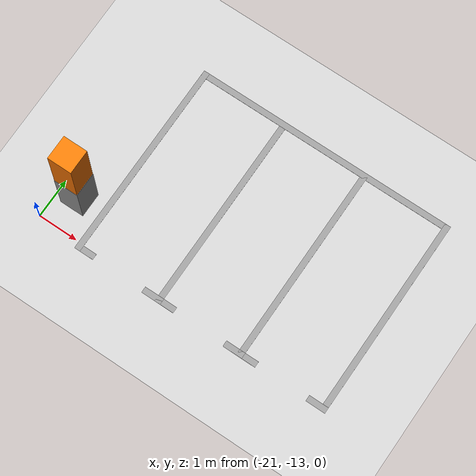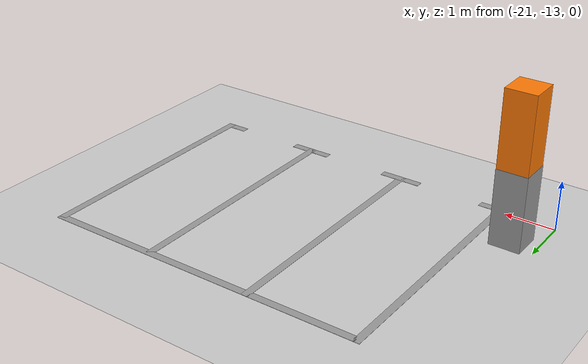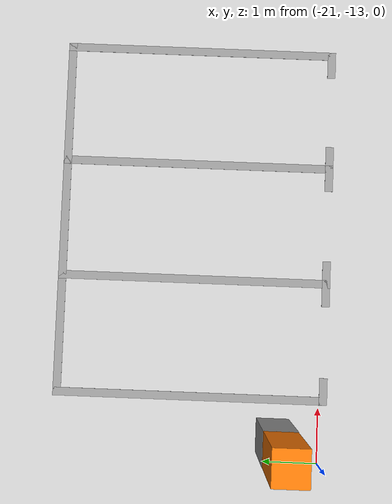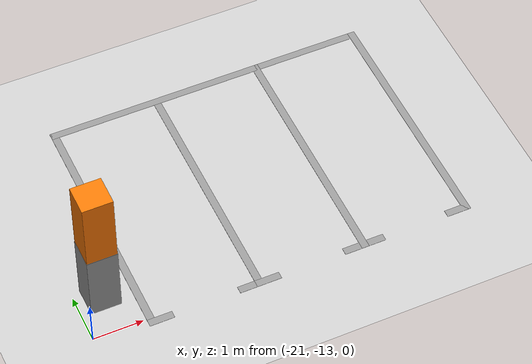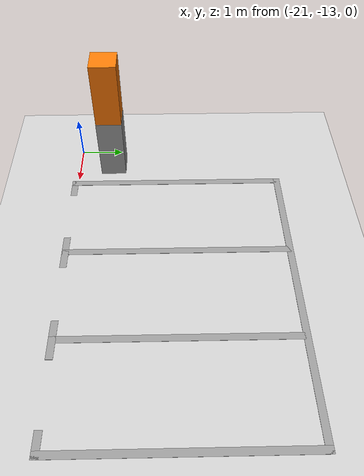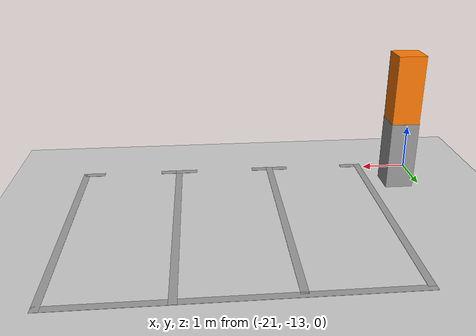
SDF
<sdf version="1.7">
 <world name="default">
  <model name="ground_plane">
   <static>1</static>
   <link name="link">
    <collision name="collision">
     <geometry><plane><normal>0 0 1</normal><size>100 100</size></plane></geometry>
     <surface><friction><ode><mu>100</mu><mu2>50</mu2></ode></friction></surface>
    </collision>
    <visual name="visual">
     <cast_shadows>0</cast_shadows>
     <geometry><plane><normal>0 0 1</normal><size>100 100</size></plane></geometry>
     <material>
      <script><uri>file://media/materials/scripts/gazebo.material</uri><name>Gazebo/Grey</name></script>
     </material>
    </visual>
   </link>
  </model>
  <model name="carport1_3_clone_clone_1">
   <pose>-17.0364 -8.876 0 0 -0 0</pose>
   <link name="Wall_105">
    <collision name="Wall_105_Collision">
     <geometry><box><size>0.61 0.6 1.5</size></box></geometry>
     <pose>0 0 0.75 0 -0 0</pose>
    </collision>
    <visual name="Wall_105_Visual">
     <pose>0 0 0.75 0 -0 0</pose>
     <geometry><box><size>0.61 0.6 1.5</size></box></geometry>
     <material>
      <script><uri>file://media/materials/scripts/gazebo.material</uri><name>Gazebo/Grey</name></script>
      <ambient>1 1 1 1</ambient>
     </material>
     <meta><layer>0</layer></meta>
    </visual>
    <pose>-3.47407 -3.2865 0 0 -0 0</pose>
   </link>
   <link name="Wall_116">
    <collision name="Wall_116_Collision">
     <geometry><box><size>5.1 0.15 0.005</size></box></geometry>
     <pose>0 0 0.0025 0 -0 0</pose>
    </collision>
    <visual name="Wall_116_Visual">
     <pose>0 0 0.0025 0 -0 0</pose>
     <geometry><box><size>5.1 0.15 0.005</size></box></geometry>
     <material>
      <script><uri>file://media/materials/scripts/gazebo.material</uri><name>Gazebo/Grey</name></script>
      <ambient>1 1 1 1</ambient>
     </material>
     <meta><layer>0</layer></meta>
    </visual>
    <pose>-2.82307 -1.7385 0 0 -0 1.5708</pose>
   </link>
   <link name="Wall_124">
    <collision name="Wall_124_Collision">
     <geometry><box><size>5.1 0.15 0.005</size></box></geometry>
     <pose>0 0 0.0025 0 -0 0</pose>
    </collision>
    <visual name="Wall_124_Visual">
     <pose>0 0 0.0025 0 -0 0</pose>
     <geometry><box><size>5.1 0.15 0.005</size></box></geometry>
     <material>
      <script><uri>file://media/materials/scripts/gazebo.material</uri><name>Gazebo/Grey</name></script>
      <ambient>1 1 1 1</ambient>
     </material>
     <meta><layer>0</layer></meta>
    </visual>
    <pose>3.70393 -1.7305 0 0 -0 1.5708</pose>
   </link>
   <link name="Wall_146">
    <collision name="Wall_146_Collision">
     <geometry><box><size>6.67711 0.15 0.005</size></box></geometry>
     <pose>0 0 0.0025 0 -0 0</pose>
    </collision>
    <visual name="Wall_146_Visual">
     <pose>0 0 0.0025 0 -0 0</pose>
     <geometry><box><size>6.67711 0.15 0.005</size></box></geometry>
     <material>
      <script><uri>file://media/materials/scripts/gazebo.material</uri><name>Gazebo/Grey</name></script>
      <ambient>1 1 1 1</ambient>
     </material>
     <meta><layer>0</layer></meta>
    </visual>
    <pose>0.440428 0.7405 0 0 -0 0.001226</pose>
   </link>
   <link name="Wall_168">
    <collision name="Wall_168_Collision">
     <geometry><box><size>5.1 0.15 0.005</size></box></geometry>
     <pose>0 0 0.0025 0 -0 0</pose>
    </collision>
    <visual name="Wall_168_Visual">
     <pose>0 0 0.0025 0 -0 0</pose>
     <geometry><box><size>5.1 0.15 0.005</size></box></geometry>
     <material>
      <script><uri>file://media/materials/scripts/gazebo.material</uri><name>Gazebo/Grey</name></script>
      <ambient>1 1 1 1</ambient>
     </material>
     <meta><layer>0</layer></meta>
    </visual>
    <pose>-0.64827 -1.73839 0 0 -0 1.57088</pose>
   </link>
   <link name="Wall_173">
    <collision name="Wall_173_Collision">
     <geometry><box><size>5.1 0.15 0.005</size></box></geometry>
     <pose>0 0 0.0025 0 -0 0</pose>
    </collision>
    <visual name="Wall_173_Visual">
     <pose>0 0 0.0025 0 -0 0</pose>
     <geometry><box><size>5.1 0.15 0.005</size></box></geometry>
     <material>
      <script><uri>file://media/materials/scripts/gazebo.material</uri><name>Gazebo/Grey</name></script>
      <ambient>1 1 1 1</ambient>
     </material>
     <meta><layer>0</layer></meta>
    </visual>
    <pose>1.52673 -1.73839 0 0 -0 1.57088</pose>
   </link>
   <link name="Wall_177">
    <collision name="Wall_177_Collision">
     <geometry><box><size>0.6 0.59 3</size></box></geometry>
     <pose>0 0 1.5 0 -0 0</pose>
    </collision>
    <visual name="Wall_177_Visual">
     <pose>0 0 1.5 0 -0 0</pose>
     <geometry><box><size>0.6 0.59 3</size></box></geometry>
     <material>
      <script><uri>file://media/materials/scripts/gazebo.material</uri><name>Gazebo/Grey</name></script>
      <ambient>0.996078 0.47451 0.0196078 1</ambient>
     </material>
     <meta><layer>0</layer></meta>
    </visual>
    <pose>-3.47407 -3.2865 0 0 -0 0</pose>
   </link>
   <link name="Wall_179">
    <collision name="Wall_179_Collision">
     <geometry><box><size>0.5 0.15 0.005</size></box></geometry>
     <pose>0 0 0.0025 0 -0 0</pose>
    </collision>
    <visual name="Wall_179_Visual">
     <pose>0 0 0.0025 0 -0 0</pose>
     <geometry><box><size>0.5 0.15 0.005</size></box></geometry>
     <material>
      <script><uri>file://media/materials/scripts/gazebo.material</uri><name>Gazebo/Grey</name></script>
      <ambient>1 1 1 1</ambient>
     </material>
     <meta><layer>0</layer></meta>
    </visual>
    <pose>-2.64807 -4.2135 0 0 -0 0</pose>
   </link>
   <link name="Wall_181">
    <collision name="Wall_181_Collision">
     <geometry><box><size>0.5 0.15 0.005</size></box></geometry>
     <pose>0 0 0.0025 0 -0 0</pose>
    </collision>
    <visual name="Wall_181_Visual">
     <pose>0 0 0.0025 0 -0 0</pose>
     <geometry><box><size>0.5 0.15 0.005</size></box></geometry>
     <material>
      <script><uri>file://media/materials/scripts/gazebo.material</uri><name>Gazebo/Grey</name></script>
      <ambient>1 1 1 1</ambient>
     </material>
     <meta><layer>0</layer></meta>
    </visual>
    <pose>-0.823072 -4.2135 0 0 -0 3.14159</pose>
   </link>
   <link name="Wall_183">
    <collision name="Wall_183_Collision">
     <geometry><box><size>0.5 0.15 0.005</size></box></geometry>
     <pose>0 0 0.0025 0 -0 0</pose>
    </collision>
    <visual name="Wall_183_Visual">
     <pose>0 0 0.0025 0 -0 0</pose>
     <geometry><box><size>0.5 0.15 0.005</size></box></geometry>
     <material>
      <script><uri>file://media/materials/scripts/gazebo.material</uri><name>Gazebo/Grey</name></script>
      <ambient>1 1 1 1</ambient>
     </material>
     <meta><layer>0</layer></meta>
    </visual>
    <pose>-0.473072 -4.2135 0 0 -0 0</pose>
   </link>
   <link name="Wall_185">
    <collision name="Wall_185_Collision">
     <geometry><box><size>0.5 0.15 0.005</size></box></geometry>
     <pose>0 0 0.0025 0 -0 0</pose>
    </collision>
    <visual name="Wall_185_Visual">
     <pose>0 0 0.0025 0 -0 0</pose>
     <geometry><box><size>0.5 0.15 0.005</size></box></geometry>
     <material>
      <script><uri>file://media/materials/scripts/gazebo.material</uri><name>Gazebo/Grey</name></script>
      <ambient>1 1 1 1</ambient>
     </material>
     <meta><layer>0</layer></meta>
    </visual>
    <pose>1.35193 -4.2135 0 0 -0 3.14159</pose>
   </link>
   <link name="Wall_187">
    <collision name="Wall_187_Collision">
     <geometry><box><size>0.5 0.15 0.005</size></box></geometry>
     <pose>0 0 0.0025 0 -0 0</pose>
    </collision>
    <visual name="Wall_187_Visual">
     <pose>0 0 0.0025 0 -0 0</pose>
     <geometry><box><size>0.5 0.15 0.005</size></box></geometry>
     <material>
      <script><uri>file://media/materials/scripts/gazebo.material</uri><name>Gazebo/Grey</name></script>
      <ambient>1 1 1 1</ambient>
     </material>
     <meta><layer>0</layer></meta>
    </visual>
    <pose>1.70193 -4.2135 0 0 -0 0</pose>
   </link>
   <link name="Wall_189">
    <collision name="Wall_189_Collision">
     <geometry><box><size>0.5 0.15 0.005</size></box></geometry>
     <pose>0 0 0.0025 0 -0 0</pose>
    </collision>
    <visual name="Wall_189_Visual">
     <pose>0 0 0.0025 0 -0 0</pose>
     <geometry><box><size>0.5 0.15 0.005</size></box></geometry>
     <material>
      <script><uri>file://media/materials/scripts/gazebo.material</uri><name>Gazebo/Grey</name></script>
      <ambient>1 1 1 1</ambient>
     </material>
     <meta><layer>0</layer></meta>
    </visual>
    <pose>3.52893 -4.2055 0 0 -0 3.14159</pose>
   </link>
   <static>1</static>
  </model>
 </world>
</sdf>
